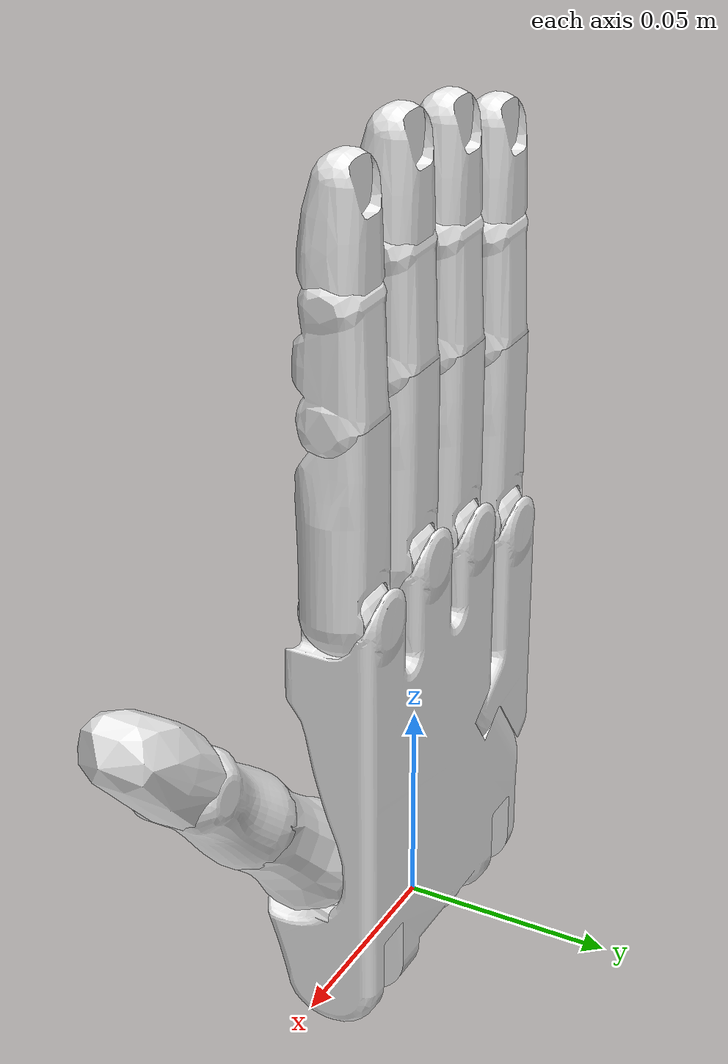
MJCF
<mujoco model="MuJoCo Model">
    <compiler angle="radian" meshdir="./mjcf/meshes/" texturedir="./mjcf/textures/" />
    <option apirate="200" iterations="20" />
    <size njmax="500" nconmax="100" nstack="600000" nuser_jnt="1" nuser_site="1" nuser_tendon="1" nuser_actuator="16" nuser_sensor="1" />
    <visual>
        <map force="0.1" fogend="5" />
    </visual>
    <default class="main">
        <default class="robot0:asset_class">
            <joint limited="true" margin="0.01" armature="0.001" damping="0.1" frictionloss="0.001" />
            <geom friction="1 0.005 0.001" margin="0.0005" />
            <site rgba="0.4 0.9 0.4 1" />
            <general ctrllimited="true" forcelimited="true" />
        </default>
        <default class="robot0:D_Touch">
            <site size="0.009 0.004 0.013" group="4" type="box" rgba="0.8 0.8 0.8 0.15" />
        </default>
        <default class="robot0:DC_Hand">
            <geom conaffinity="0" group="4" material="robot0:MatColl" />
        </default>
        <default class="robot0:D_Vizual">
            <geom type="mesh" contype="0" conaffinity="0" group="1" material="robot0:MatViz" />
        </default>
        <default class="robot0:free">
            <joint type="free" />
        </default>
    </default>
    <asset>
        <texture type="skybox" builtin="gradient" rgb1="0.44 0.85 0.56" rgb2="0.46 0.87 0.58" width="32" height="192" />
        <texture type="2d" name="robot0:texplane" builtin="checker" rgb1="0.2 0.3 0.4" rgb2="0.1 0.15 0.2" width="512" height="512" />
        <texture type="cube" name="robot0:texgeom" builtin="flat" mark="cross" rgb1="0.3 0.6 0.5" rgb2="0.3 0.6 0.5" width="127" height="762" />
        <material name="robot0:MatGnd" texture="robot0:texplane" texuniform="true" reflectance="0.5" />
        <material name="robot0:MatColl" specular="1" shininess="0.3" reflectance="0.5" rgba="0.4 0.5 0.6 1" />
        <material name="robot0:MatViz" specular="0.75" shininess="0.1" reflectance="0.5" rgba="0.93 0.93 0.93 1" />
        <material name="robot0:object" texture="robot0:texgeom" />
        <material name="floor_mat" specular="0" rgba="0.2 0.2 0.2 0" />
        <mesh name="robot0:forearm" file="forearm_electric.obj" />
        <mesh name="robot0:forearm_cvx" file="forearm_electric_cvx.obj" />
        <mesh name="robot0:wrist" file="wrist.obj" scale="0.001 0.001 0.001" />
        <mesh name="robot0:palm" file="palm.obj" scale="0.001 0.001 0.001" />
        <mesh name="robot0:knuckle" file="knuckle.obj" scale="0.001 0.001 0.001" />
        <mesh name="robot0:F3" file="F3.obj" scale="0.001 0.001 0.001" />
        <mesh name="robot0:F2" file="F2.obj" scale="0.001 0.001 0.001" />
        <mesh name="robot0:F1" file="F1.obj" scale="0.001 0.001 0.001" />
        <mesh name="robot0:lfmetacarpal" file="lfmetacarpal.obj" scale="0.001 0.001 0.001" />
        <mesh name="robot0:TH3_z" file="TH3_z.obj" scale="0.001 0.001 0.001" />
        <mesh name="robot0:TH2_z" file="TH2_z.obj" scale="0.001 0.001 0.001" />
        <mesh name="robot0:TH1_z" file="TH1_z.obj" scale="0.001 0.001 0.001" />
    </asset>
    <worldbody>
        <body name="robot0:palm">
            <inertial pos="0.006 0 0.036" quat="0.715833 0.0439898 0.0749825 0.692839" mass="0.3" diaginertia="0.001 0.001 0.001" />
            <geom name="robot0:V_palm" class="robot0:D_Vizual" mesh="robot0:palm" />
            <body name="robot0:ffknuckle" pos="0.033 0 0.095">
                <inertial pos="0 0 0" quat="0.520062 0.854102 0.00600072 -0.00300036" mass="0.008" diaginertia="1e-05 1e-05 1e-05" />
                <joint name="robot0:FFJ3" pos="0 0 0" axis="0 1 0" range="-0.349 0.349" user="1103" />
                <geom name="robot0:V_ffknuckle" class="robot0:D_Vizual" mesh="robot0:knuckle" />
                <body name="robot0:ffproximal" pos="0 0 0">
                    <inertial pos="0 0 0.023" quat="0.707095 -0.00400054 0.00400054 0.707095" mass="0.014" diaginertia="1e-05 1e-05 1e-05" />
                    <joint name="robot0:FFJ2" pos="0 0 0" axis="1 0 0" range="0 1.571" user="1102" />
                    <geom name="robot0:V_ffproximal" class="robot0:D_Vizual" mesh="robot0:F3" />
                    <body name="robot0:ffmiddle" pos="0 0 0.045">
                        <inertial pos="0 0 0.011" quat="0.707107 0 0 0.707107" mass="0.012" diaginertia="1e-05 1e-05 1e-05" />
                        <joint name="robot0:FFJ1" pos="0 0 0" axis="1 0 0" range="0 1.571" user="1101" />
                        <geom name="robot0:V_ffmiddle" class="robot0:D_Vizual" mesh="robot0:F2" />
                        <body name="robot0:ffdistal" pos="0 0 0.025">
                            <inertial pos="0 0 0.015" quat="0.7071 -0.00300043 0.00300043 0.7071" mass="0.01" diaginertia="1e-05 1e-05 1e-05" />
                            <joint name="robot0:FFJ0" pos="0 0 0" axis="1 0 0" range="0 1.571" user="1100" />
                            <geom name="robot0:V_ffdistal" class="robot0:D_Vizual" pos="0 0 0.001" mesh="robot0:F1" />
                            <site name="robot0:S_fftip" pos="0 0 0.026" group="3" />
                            <site name="robot0:Tch_fftip" class="robot0:D_Touch" pos="0 -0.004 0.018" />
                        </body>
                    </body>
                </body>
            </body>
            <body name="robot0:mfknuckle" pos="0.011 0 0.099">
                <inertial pos="0 0 0" quat="0.520062 0.854102 0.00600072 -0.00300036" mass="0.008" diaginertia="1e-05 1e-05 1e-05" />
                <joint name="robot0:MFJ3" pos="0 0 0" axis="0 1 0" range="-0.349 0.349" user="1107" />
                <geom name="robot0:V_mfknuckle" class="robot0:D_Vizual" mesh="robot0:knuckle" />
                <body name="robot0:mfproximal" pos="0 0 0">
                    <inertial pos="0 0 0.023" quat="0.707095 -0.00400054 0.00400054 0.707095" mass="0.014" diaginertia="1e-05 1e-05 1e-05" />
                    <joint name="robot0:MFJ2" pos="0 0 0" axis="1 0 0" range="0 1.571" user="1106" />
                    <geom name="robot0:V_mfproximal" class="robot0:D_Vizual" mesh="robot0:F3" />
                    <body name="robot0:mfmiddle" pos="0 0 0.045">
                        <inertial pos="0 0 0.012" quat="0.707107 0 0 0.707107" mass="0.012" diaginertia="1e-05 1e-05 1e-05" />
                        <joint name="robot0:MFJ1" pos="0 0 0" axis="1 0 0" range="0 1.571" user="1105" />
                        <geom name="robot0:V_mfmiddle" class="robot0:D_Vizual" mesh="robot0:F2" />
                        <body name="robot0:mfdistal" pos="0 0 0.025">
                            <inertial pos="0 0 0.015" quat="0.7071 -0.00300043 0.00300043 0.7071" mass="0.01" diaginertia="1e-05 1e-05 1e-05" />
                            <joint name="robot0:MFJ0" pos="0 0 0" axis="1 0 0" range="0 1.571" user="1104" />
                            <geom name="robot0:V_mfdistal" class="robot0:D_Vizual" mesh="robot0:F1" />
                            <site name="robot0:S_mftip" pos="0 0 0.026" group="3" />
                            <site name="robot0:Tch_mftip" class="robot0:D_Touch" pos="0 -0.004 0.018" />
                        </body>
                    </body>
                </body>
            </body>
            <body name="robot0:rfknuckle" pos="-0.011 0 0.095">
                <inertial pos="0 0 0" quat="0.520062 0.854102 0.00600072 -0.00300036" mass="0.008" diaginertia="1e-05 1e-05 1e-05" />
                <joint name="robot0:RFJ3" pos="0 0 0" axis="0 1 0" range="-0.349 0.349" user="1111" />
                <geom name="robot0:V_rfknuckle" class="robot0:D_Vizual" mesh="robot0:knuckle" />
                <body name="robot0:rfproximal" pos="0 0 0">
                    <inertial pos="0 0 0.023" quat="0.707095 -0.00400054 0.00400054 0.707095" mass="0.014" diaginertia="1e-05 1e-05 1e-05" />
                    <joint name="robot0:RFJ2" pos="0 0 0" axis="1 0 0" range="0 1.571" user="1110" />
                    <geom name="robot0:V_rfproximal" class="robot0:D_Vizual" mesh="robot0:F3" />
                    <body name="robot0:rfmiddle" pos="0 0 0.045">
                        <inertial pos="0 0 0.012" quat="0.707107 0 0 0.707107" mass="0.012" diaginertia="1e-05 1e-05 1e-05" />
                        <joint name="robot0:RFJ1" pos="0 0 0" axis="1 0 0" range="0 1.571" user="1109" />
                        <geom name="robot0:V_rfmiddle" class="robot0:D_Vizual" mesh="robot0:F2" />
                        <body name="robot0:rfdistal" pos="0 0 0.025">
                            <inertial pos="0 0 0.015" quat="0.7071 -0.00300043 0.00300043 0.7071" mass="0.01" diaginertia="1e-05 1e-05 1e-05" />
                            <joint name="robot0:RFJ0" pos="0 0 0" axis="1 0 0" range="0 1.571" user="1108" />
                            <geom name="robot0:V_rfdistal" class="robot0:D_Vizual" pos="0 0 0.001" mesh="robot0:F1" />
                            <site name="robot0:S_rftip" pos="0 0 0.026" group="3" />
                            <site name="robot0:Tch_rftip" class="robot0:D_Touch" pos="0 -0.004 0.018" />
                        </body>
                    </body>
                </body>
            </body>
            <body name="robot0:lfmetacarpal" pos="-0.017 0 0.044">
                <inertial pos="-0.014 0.001 0.014" quat="0.709167 -0.0920216 -0.0630148 0.696164" mass="0.075" diaginertia="1e-05 1e-05 1e-05" />
                <joint name="robot0:LFJ4" pos="0 0 0" axis="0.570977 0 0.820966" range="0 0.785" user="1116" />
                <geom name="robot0:V_lfmetacarpal" class="robot0:D_Vizual" pos="-0.016 0 -0.023" mesh="robot0:lfmetacarpal" />
                <body name="robot0:lfknuckle" pos="-0.017 0 0.044">
                    <inertial pos="0 0 0" quat="0.520062 0.854102 0.00600072 -0.00300036" mass="0.008" diaginertia="1e-05 1e-05 1e-05" />
                    <joint name="robot0:LFJ3" pos="0 0 0" axis="0 1 0" range="-0.349 0.349" user="1115" />
                    <geom name="robot0:V_lfknuckle" class="robot0:D_Vizual" mesh="robot0:knuckle" />
                    <body name="robot0:lfproximal" pos="0 0 0">
                        <inertial pos="0 0 0.023" quat="0.707095 -0.00400054 0.00400054 0.707095" mass="0.014" diaginertia="1e-05 1e-05 1e-05" />
                        <joint name="robot0:LFJ2" pos="0 0 0" axis="1 0 0" range="0 1.571" user="1114" />
                        <geom name="robot0:V_lfproximal" class="robot0:D_Vizual" mesh="robot0:F3" />
                        <body name="robot0:lfmiddle" pos="0 0 0.045">
                            <inertial pos="0 0 0.012" quat="0.707107 0 0 0.707107" mass="0.012" diaginertia="1e-05 1e-05 1e-05" />
                            <joint name="robot0:LFJ1" pos="0 0 0" axis="1 0 0" range="0 1.571" user="1113" />
                            <geom name="robot0:V_lfmiddle" class="robot0:D_Vizual" mesh="robot0:F2" />
                            <body name="robot0:lfdistal" pos="0 0 0.025">
                                <inertial pos="0 0 0.015" quat="0.7071 -0.00300043 0.00300043 0.7071" mass="0.01" diaginertia="1e-05 1e-05 1e-05" />
                                <joint name="robot0:LFJ0" pos="0 0 0" axis="1 0 0" range="0 1.571" user="1112" />
                                <geom name="robot0:V_lfdistal" class="robot0:D_Vizual" pos="0 0 0.001" mesh="robot0:F1" />
                                <site name="robot0:S_lftip" pos="0 0 0.026" group="3" />
                                <site name="robot0:Tch_lftip" class="robot0:D_Touch" pos="0 -0.004 0.018" />
                            </body>
                        </body>
                    </body>
                </body>
            </body>
            <body name="robot0:thbase" pos="0.034 -0.009 0.029" quat="0.923956 0 0.382499 0">
                <inertial pos="0 0 0" mass="0.01" diaginertia="1e-05 1e-05 1e-05" />
                <joint name="robot0:THJ4" pos="0 0 0" axis="0 0 -1" range="-1.047 1.047" user="1121" />
                <geom name="robot0:V_thbase" size="0.001 0.001 0.001" type="box" group="1" />
                <body name="robot0:thproximal" pos="0 0 0">
                    <inertial pos="0 0 0.017" quat="0.981604 0 0.000999597 0.190923" mass="0.016" diaginertia="1e-05 1e-05 1e-05" />
                    <joint name="robot0:THJ3" pos="0 0 0" axis="1 0 0" range="0 1.222" user="1120" />
                    <geom name="robot0:V_thproximal" class="robot0:D_Vizual" mesh="robot0:TH3_z" />
                    <body name="robot0:thhub" pos="0 0 0.038">
                        <inertial pos="0 0 0" mass="0.002" diaginertia="1e-05 1e-05 1e-05" />
                        <joint name="robot0:THJ2" pos="0 0 0" axis="1 0 0" range="-0.209 0.209" user="1119" />
                        <geom name="robot0:V_thhub" size="0.001 0.001 0.001" type="box" group="1" />
                        <body name="robot0:thmiddle" pos="0 0 0">
                            <inertial pos="0 0 0.016" quat="0.999971 -0.000999971 -0.00699979 0.00299991" mass="0.016" diaginertia="1e-05 1e-05 1e-05" />
                            <joint name="robot0:THJ1" pos="0 0 0" axis="0 1 0" range="-0.524 0.524" user="1118" />
                            <geom name="robot0:V_thmiddle" class="robot0:D_Vizual" mesh="robot0:TH2_z" />
                            <body name="robot0:thdistal" pos="0 0 0.032">
                                <inertial pos="0 0 0.016" quat="0.99887 -0.00499935 -0.0469939 0.00499935" mass="0.016" diaginertia="1e-05 1e-05 1e-05" />
                                <joint name="robot0:THJ0" pos="0 0 0" axis="0 1 0" range="-1.571 0" user="1117" />
                                <geom name="robot0:V_thdistal" class="robot0:D_Vizual" mesh="robot0:TH1_z" />
                                <site name="robot0:S_thtip" pos="0 0 0.0275" group="3" />
                                <site name="robot0:Tch_thtip" class="robot0:D_Touch" pos="-0.005 0 0.02" size="0.005 0.011 0.016" />
                            </body>
                        </body>
                    </body>
                </body>
            </body>
        </body>
    </worldbody>
    <contact>
        <pair geom1="robot0:C_palm0" geom2="robot0:C_thdistal" condim="1" />
        <pair geom1="robot0:C_ffproximal" geom2="robot0:C_mfproximal" condim="1" />
        <pair geom1="robot0:C_ffproximal" geom2="robot0:C_thdistal" condim="1" />
        <pair geom1="robot0:C_ffmiddle" geom2="robot0:C_thdistal" condim="1" />
        <pair geom1="robot0:C_ffdistal" geom2="robot0:C_mfdistal" condim="1" />
        <pair geom1="robot0:C_ffdistal" geom2="robot0:C_thdistal" condim="1" />
        <pair geom1="robot0:C_mfproximal" geom2="robot0:C_rfproximal" condim="1" />
        <pair geom1="robot0:C_mfproximal" geom2="robot0:C_thdistal" condim="1" />
        <pair geom1="robot0:C_mfdistal" geom2="robot0:C_rfdistal" condim="1" />
        <pair geom1="robot0:C_mfdistal" geom2="robot0:C_lfdistal" condim="1" />
        <pair geom1="robot0:C_mfdistal" geom2="robot0:C_thdistal" condim="1" />
        <pair geom1="robot0:C_rfproximal" geom2="robot0:C_lfproximal" condim="1" />
        <pair geom1="robot0:C_rfmiddle" geom2="robot0:C_lfmiddle" condim="1" />
        <pair geom1="robot0:C_rfmiddle" geom2="robot0:C_lfdistal" condim="1" />
        <pair geom1="robot0:C_rfdistal" geom2="robot0:C_lfmiddle" condim="1" />
        <pair geom1="robot0:C_rfdistal" geom2="robot0:C_lfdistal" condim="1" />
        <pair geom1="robot0:C_rfdistal" geom2="robot0:C_lfdistal" condim="1" />
        <pair geom1="robot0:C_rfdistal" geom2="robot0:C_thdistal" condim="1" />
        <pair geom1="robot0:C_lfdistal" geom2="robot0:C_thdistal" condim="1" />
    </contact>
    <tendon>
        <fixed name="robot0:T_FFJ1c" limited="true" range="-0.001 0.001">
            <joint joint="robot0:FFJ0" coef="0.00705" />
            <joint joint="robot0:FFJ1" coef="-0.00805" />
        </fixed>
        <fixed name="robot0:T_MFJ1c" limited="true" range="-0.001 0.001">
            <joint joint="robot0:MFJ0" coef="0.00705" />
            <joint joint="robot0:MFJ1" coef="-0.00805" />
        </fixed>
        <fixed name="robot0:T_RFJ1c" limited="true" range="-0.001 0.001">
            <joint joint="robot0:RFJ0" coef="0.00705" />
            <joint joint="robot0:RFJ1" coef="-0.00805" />
        </fixed>
        <fixed name="robot0:T_LFJ1c" limited="true" range="-0.001 0.001">
            <joint joint="robot0:LFJ0" coef="0.00705" />
            <joint joint="robot0:LFJ1" coef="-0.00805" />
        </fixed>
    </tendon>
    <actuator>
        <general name="robot0:A_WRJ1" class="robot0:asset_class" joint="robot0:WRJ1" ctrlrange="-0.489 0.14" forcerange="-4.785 4.785" biastype="affine" gainprm="5 0 0 0 0 0 0 0 0 0" biasprm="0 -5 0 0 0 0 0 0 0 0" user="2038 0 0 0 0 0 0 0 0 0 0 0 0 0 0 0" />
        <general name="robot0:A_WRJ0" class="robot0:asset_class" joint="robot0:WRJ0" ctrlrange="-0.698 0.489" forcerange="-2.175 2.175" biastype="affine" gainprm="5 0 0 0 0 0 0 0 0 0" biasprm="0 -5 0 0 0 0 0 0 0 0" user="2036 0 0 0 0 0 0 0 0 0 0 0 0 0 0 0" />
        <general name="robot0:A_FFJ3" class="robot0:asset_class" joint="robot0:FFJ3" ctrlrange="-0.349 0.349" forcerange="-0.9 0.9" biastype="affine" biasprm="0 -1 0 0 0 0 0 0 0 0" user="2004 0 0 0 0 0 0 0 0 0 0 0 0 0 0 0" />
        <general name="robot0:A_FFJ2" class="robot0:asset_class" joint="robot0:FFJ2" ctrlrange="0 1.571" forcerange="-0.9 0.9" biastype="affine" biasprm="0 -1 0 0 0 0 0 0 0 0" user="2002 0 0 0 0 0 0 0 0 0 0 0 0 0 0 0" />
        <general name="robot0:A_FFJ1" class="robot0:asset_class" joint="robot0:FFJ1" ctrlrange="0 1.571" forcerange="-0.7245 0.7245" biastype="affine" biasprm="0 -1 0 0 0 0 0 0 0 0" user="2000 0 0 0 0 0 0 0 0 0 0 0 0 0 0 0" />
        <general name="robot0:A_MFJ3" class="robot0:asset_class" joint="robot0:MFJ3" ctrlrange="-0.349 0.349" forcerange="-0.9 0.9" biastype="affine" biasprm="0 -1 0 0 0 0 0 0 0 0" user="2010 0 0 0 0 0 0 0 0 0 0 0 0 0 0 0" />
        <general name="robot0:A_MFJ2" class="robot0:asset_class" joint="robot0:MFJ2" ctrlrange="0 1.571" forcerange="-0.9 0.9" biastype="affine" biasprm="0 -1 0 0 0 0 0 0 0 0" user="2008 0 0 0 0 0 0 0 0 0 0 0 0 0 0 0" />
        <general name="robot0:A_MFJ1" class="robot0:asset_class" joint="robot0:MFJ1" ctrlrange="0 1.571" forcerange="-0.7245 0.7245" biastype="affine" biasprm="0 -1 0 0 0 0 0 0 0 0" user="2006 0 0 0 0 0 0 0 0 0 0 0 0 0 0 0" />
        <general name="robot0:A_RFJ3" class="robot0:asset_class" joint="robot0:RFJ3" ctrlrange="-0.349 0.349" forcerange="-0.9 0.9" biastype="affine" biasprm="0 -1 0 0 0 0 0 0 0 0" user="2016 0 0 0 0 0 0 0 0 0 0 0 0 0 0 0" />
        <general name="robot0:A_RFJ2" class="robot0:asset_class" joint="robot0:RFJ2" ctrlrange="0 1.571" forcerange="-0.9 0.9" biastype="affine" biasprm="0 -1 0 0 0 0 0 0 0 0" user="2014 0 0 0 0 0 0 0 0 0 0 0 0 0 0 0" />
        <general name="robot0:A_RFJ1" class="robot0:asset_class" joint="robot0:RFJ1" ctrlrange="0 1.571" forcerange="-0.7245 0.7245" biastype="affine" biasprm="0 -1 0 0 0 0 0 0 0 0" user="2012 0 0 0 0 0 0 0 0 0 0 0 0 0 0 0" />
        <general name="robot0:A_LFJ4" class="robot0:asset_class" joint="robot0:LFJ4" ctrlrange="0 0.785" forcerange="-0.9 0.9" biastype="affine" biasprm="0 -1 0 0 0 0 0 0 0 0" user="2024 0 0 0 0 0 0 0 0 0 0 0 0 0 0 0" />
        <general name="robot0:A_LFJ3" class="robot0:asset_class" joint="robot0:LFJ3" ctrlrange="-0.349 0.349" forcerange="-0.9 0.9" biastype="affine" biasprm="0 -1 0 0 0 0 0 0 0 0" user="2022 0 0 0 0 0 0 0 0 0 0 0 0 0 0 0" />
        <general name="robot0:A_LFJ2" class="robot0:asset_class" joint="robot0:LFJ2" ctrlrange="0 1.571" forcerange="-0.9 0.9" biastype="affine" biasprm="0 -1 0 0 0 0 0 0 0 0" user="2020 0 0 0 0 0 0 0 0 0 0 0 0 0 0 0" />
        <general name="robot0:A_LFJ1" class="robot0:asset_class" joint="robot0:LFJ1" ctrlrange="0 1.571" forcerange="-0.7245 0.7245" biastype="affine" biasprm="0 -1 0 0 0 0 0 0 0 0" user="2018 0 0 0 0 0 0 0 0 0 0 0 0 0 0 0" />
        <general name="robot0:A_THJ4" class="robot0:asset_class" joint="robot0:THJ4" ctrlrange="-1.047 1.047" forcerange="-2.3722 2.3722" biastype="affine" biasprm="0 -1 0 0 0 0 0 0 0 0" user="2034 0 0 0 0 0 0 0 0 0 0 0 0 0 0 0" />
        <general name="robot0:A_THJ3" class="robot0:asset_class" joint="robot0:THJ3" ctrlrange="0 1.222" forcerange="-1.45 1.45" biastype="affine" biasprm="0 -1 0 0 0 0 0 0 0 0" user="2032 0 0 0 0 0 0 0 0 0 0 0 0 0 0 0" />
        <general name="robot0:A_THJ2" class="robot0:asset_class" joint="robot0:THJ2" ctrlrange="-0.209 0.209" forcerange="-0.99 0.99" biastype="affine" biasprm="0 -1 0 0 0 0 0 0 0 0" user="2030 0 0 0 0 0 0 0 0 0 0 0 0 0 0 0" />
        <general name="robot0:A_THJ1" class="robot0:asset_class" joint="robot0:THJ1" ctrlrange="-0.524 0.524" forcerange="-0.99 0.99" biastype="affine" biasprm="0 -1 0 0 0 0 0 0 0 0" user="2028 0 0 0 0 0 0 0 0 0 0 0 0 0 0 0" />
        <general name="robot0:A_THJ0" class="robot0:asset_class" joint="robot0:THJ0" ctrlrange="-1.571 0" forcerange="-0.81 0.81" biastype="affine" biasprm="0 -1 0 0 0 0 0 0 0 0" user="2026 0 0 0 0 0 0 0 0 0 0 0 0 0 0 0" />
    </actuator>
    <sensor>
        <jointpos joint="robot0:WRJ1" name="robot0:Sjp_WRJ1" />
        <jointpos joint="robot0:WRJ0" name="robot0:Sjp_WRJ0" />
        <jointpos joint="robot0:FFJ3" name="robot0:Sjp_FFJ3" />
        <jointpos joint="robot0:FFJ2" name="robot0:Sjp_FFJ2" />
        <jointpos joint="robot0:FFJ1" name="robot0:Sjp_FFJ1" />
        <jointpos joint="robot0:FFJ0" name="robot0:Sjp_FFJ0" />
        <jointpos joint="robot0:MFJ3" name="robot0:Sjp_MFJ3" />
        <jointpos joint="robot0:MFJ2" name="robot0:Sjp_MFJ2" />
        <jointpos joint="robot0:MFJ1" name="robot0:Sjp_MFJ1" />
        <jointpos joint="robot0:MFJ0" name="robot0:Sjp_MFJ0" />
        <jointpos joint="robot0:RFJ3" name="robot0:Sjp_RFJ3" />
        <jointpos joint="robot0:RFJ2" name="robot0:Sjp_RFJ2" />
        <jointpos joint="robot0:RFJ1" name="robot0:Sjp_RFJ1" />
        <jointpos joint="robot0:RFJ0" name="robot0:Sjp_RFJ0" />
        <jointpos joint="robot0:LFJ4" name="robot0:Sjp_LFJ4" />
        <jointpos joint="robot0:LFJ3" name="robot0:Sjp_LFJ3" />
        <jointpos joint="robot0:LFJ2" name="robot0:Sjp_LFJ2" />
        <jointpos joint="robot0:LFJ1" name="robot0:Sjp_LFJ1" />
        <jointpos joint="robot0:LFJ0" name="robot0:Sjp_LFJ0" />
        <jointpos joint="robot0:THJ4" name="robot0:Sjp_THJ4" />
        <jointpos joint="robot0:THJ3" name="robot0:Sjp_THJ3" />
        <jointpos joint="robot0:THJ2" name="robot0:Sjp_THJ2" />
        <jointpos joint="robot0:THJ1" name="robot0:Sjp_THJ1" />
        <jointpos joint="robot0:THJ0" name="robot0:Sjp_THJ0" />
        <touch site="robot0:Tch_fftip" name="robot0:ST_Tch_fftip" />
        <touch site="robot0:Tch_mftip" name="robot0:ST_Tch_mftip" />
        <touch site="robot0:Tch_rftip" name="robot0:ST_Tch_rftip" />
        <touch site="robot0:Tch_lftip" name="robot0:ST_Tch_lftip" />
        <touch site="robot0:Tch_thtip" name="robot0:ST_Tch_thtip" />
    </sensor>
</mujoco>
